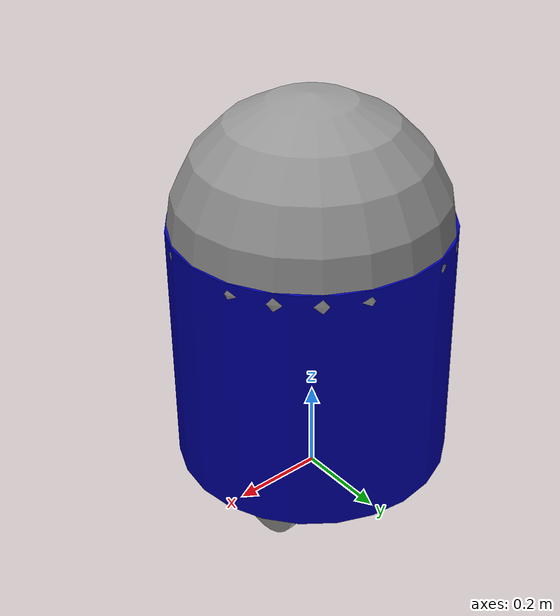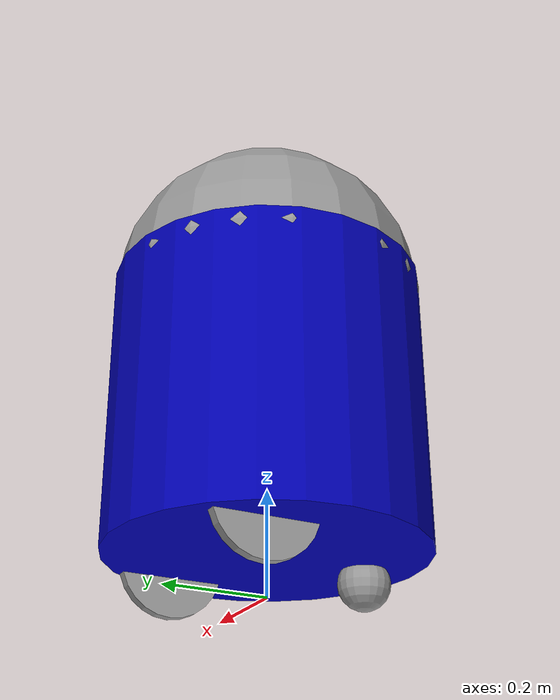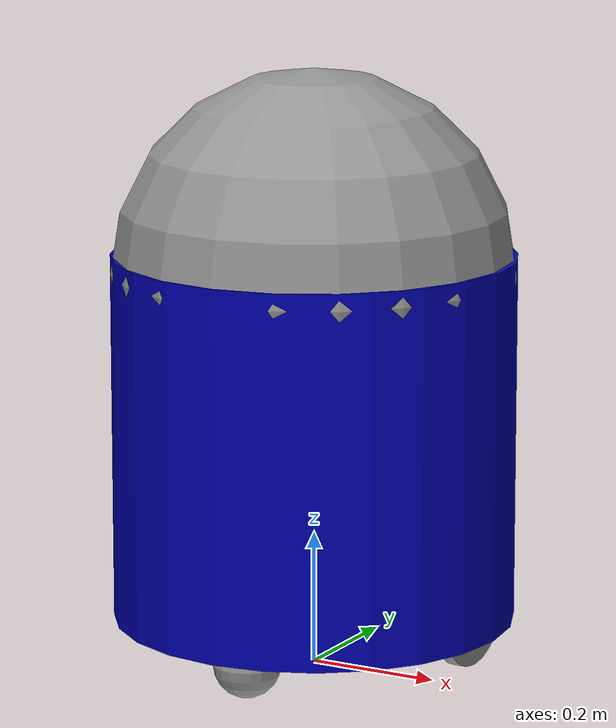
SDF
<?xml version='1.0'?>
<sdf version='1.6'>
  <model name='R3D3'>
    <link name='link_0'>
      <pose frame=''>0 -0 0.6 0 -0 0</pose>
      <inertial>
        <mass>1</mass>
        <inertia>
          <ixx>0.1</ixx>
          <ixy>0</ixy>
          <ixz>0</ixz>
          <iyy>0.1</iyy>
          <iyz>0</iyz>
          <izz>0.1</izz>
        </inertia>
        <pose frame=''>0 0 0 0 -0 0</pose>
      </inertial>
      <self_collide>0</self_collide>
      <kinematic>0</kinematic>
      <visual name='visual'>
        <pose frame=''>0 0 0 0 -0 0</pose>
        <geometry>
          <sphere>
            <radius>0.3</radius>
          </sphere>
        </geometry>
        <material>
          <lighting>1</lighting>
          <script>
            <uri>file://media/materials/scripts/gazebo.material</uri>
            <name>Gazebo/Grey</name>
          </script>
          <ambient>0.9 0.9 0.9 1</ambient>
          <diffuse>0.9 0.9 0.9 1</diffuse>
          <specular>0.9 0.9 0.9 1</specular>
          <emissive>0 0 0 1</emissive>
          <shader type='vertex'>
            <normal_map>__default__</normal_map>
          </shader>
        </material>
        <transparency>0</transparency>
        <cast_shadows>1</cast_shadows>
      </visual>
      <collision name='collision'>
        <laser_retro>0</laser_retro>
        <max_contacts>10</max_contacts>
        <pose frame=''>0 0 0 0 -0 0</pose>
        <geometry>
          <sphere>
            <radius>0.3</radius>
          </sphere>
        </geometry>
        <surface>
          <friction>
            <ode>
              <mu>1</mu>
              <mu2>1</mu2>
              <fdir1>0 0 0</fdir1>
              <slip1>0</slip1>
              <slip2>0</slip2>
            </ode>
            <torsional>
              <coefficient>1</coefficient>
              <patch_radius>0</patch_radius>
              <surface_radius>0</surface_radius>
              <use_patch_radius>1</use_patch_radius>
              <ode>
                <slip>0</slip>
              </ode>
            </torsional>
          </friction>
          <bounce>
            <restitution_coefficient>0</restitution_coefficient>
            <threshold>1e+06</threshold>
          </bounce>
          <contact>
            <collide_without_contact>0</collide_without_contact>
            <collide_without_contact_bitmask>1</collide_without_contact_bitmask>
            <collide_bitmask>1</collide_bitmask>
            <ode>
              <soft_cfm>0</soft_cfm>
              <soft_erp>0.2</soft_erp>
              <kp>1e+13</kp>
              <kd>1</kd>
              <max_vel>0.01</max_vel>
              <min_depth>0</min_depth>
            </ode>
            <bullet>
              <split_impulse>1</split_impulse>
              <split_impulse_penetration_threshold>-0.01</split_impulse_penetration_threshold>
              <soft_cfm>0</soft_cfm>
              <soft_erp>0.2</soft_erp>
              <kp>1e+13</kp>
              <kd>1</kd>
            </bullet>
          </contact>
        </surface>
      </collision>
    </link>
    <link name='link_1'>
      <pose frame=''>0 -0 0.35 0 -0 0</pose>
      <inertial>
        <mass>1</mass>
        <inertia>
          <ixx>0.145833</ixx>
          <ixy>0</ixy>
          <ixz>0</ixz>
          <iyy>0.145833</iyy>
          <iyz>0</iyz>
          <izz>0.125</izz>
        </inertia>
        <pose frame=''>0 0 0 0 -0 0</pose>
      </inertial>
      <self_collide>0</self_collide>
      <kinematic>0</kinematic>
      <visual name='visual'>
        <pose frame=''>0 0 0 0 -0 0</pose>
        <geometry>
          <cylinder>
            <radius>0.3</radius>
            <length>0.55</length>
          </cylinder>
        </geometry>
        <material>
          <lighting>1</lighting>
          <script>
            <uri>file://media/materials/scripts/gazebo.material</uri>
            <name>Gazebo/Grey</name>
          </script>
          <ambient>0 0 0.3 1</ambient>
          <diffuse>0 0 0.7 1</diffuse>
          <specular>0 0 0.01 1</specular>
          <emissive>0 0 0 1</emissive>
          <shader type='vertex'>
            <normal_map>__default__</normal_map>
          </shader>
        </material>
        <transparency>0</transparency>
        <cast_shadows>1</cast_shadows>
      </visual>
      <collision name='collision'>
        <laser_retro>0</laser_retro>
        <max_contacts>10</max_contacts>
        <pose frame=''>0 0 0 0 -0 0</pose>
        <geometry>
          <cylinder>
            <radius>0.3</radius>
            <length>0.55</length>
          </cylinder>
        </geometry>
        <surface>
          <friction>
            <ode>
              <mu>1</mu>
              <mu2>1</mu2>
              <fdir1>0 0 0</fdir1>
              <slip1>0</slip1>
              <slip2>0</slip2>
            </ode>
            <torsional>
              <coefficient>1</coefficient>
              <patch_radius>0</patch_radius>
              <surface_radius>0</surface_radius>
              <use_patch_radius>1</use_patch_radius>
              <ode>
                <slip>0</slip>
              </ode>
            </torsional>
          </friction>
          <bounce>
            <restitution_coefficient>0</restitution_coefficient>
            <threshold>1e+06</threshold>
          </bounce>
          <contact>
            <collide_without_contact>0</collide_without_contact>
            <collide_without_contact_bitmask>1</collide_without_contact_bitmask>
            <collide_bitmask>1</collide_bitmask>
            <ode>
              <soft_cfm>0</soft_cfm>
              <soft_erp>0.2</soft_erp>
              <kp>1e+13</kp>
              <kd>1</kd>
              <max_vel>0.01</max_vel>
              <min_depth>0</min_depth>
            </ode>
            <bullet>
              <split_impulse>1</split_impulse>
              <split_impulse_penetration_threshold>-0.01</split_impulse_penetration_threshold>
              <soft_cfm>0</soft_cfm>
              <soft_erp>0.2</soft_erp>
              <kp>1e+13</kp>
              <kd>1</kd>
            </bullet>
          </contact>
        </surface>
      </collision>
    </link>
    <link name='link_3'>
      <pose frame=''>-0.189936 0.1 0.1 -1e-06 1.57 -1e-06</pose>
      <inertial>
        <mass>1</mass>
        <inertia>
          <ixx>0.145833</ixx>
          <ixy>0</ixy>
          <ixz>0</ixz>
          <iyy>0.145833</iyy>
          <iyz>0</iyz>
          <izz>0.125</izz>
        </inertia>
        <pose frame=''>0 0 0 0 -0 0</pose>
      </inertial>
      <self_collide>0</self_collide>
      <kinematic>0</kinematic>
      <visual name='visual'>
        <pose frame=''>0 0 0 0 -0 0</pose>
        <geometry>
          <cylinder>
            <radius>0.1</radius>
            <length>0.02</length>
          </cylinder>
        </geometry>
        <material>
          <lighting>1</lighting>
          <script>
            <uri>file://media/materials/scripts/gazebo.material</uri>
            <name>Gazebo/Grey</name>
          </script>
          <ambient>0.3 0.3 0.3 1</ambient>
          <diffuse>0.7 0.7 0.7 1</diffuse>
          <specular>0.01 0.01 0.01 1</specular>
          <emissive>0 0 0 1</emissive>
          <shader type='vertex'>
            <normal_map>__default__</normal_map>
          </shader>
        </material>
        <transparency>0</transparency>
        <cast_shadows>1</cast_shadows>
      </visual>
      <collision name='collision'>
        <laser_retro>0</laser_retro>
        <max_contacts>10</max_contacts>
        <pose frame=''>0 0 0 0 -0 0</pose>
        <geometry>
          <cylinder>
            <radius>0.1</radius>
            <length>0.02</length>
          </cylinder>
        </geometry>
        <surface>
          <friction>
            <ode>
              <mu>1</mu>
              <mu2>1</mu2>
              <fdir1>0 0 0</fdir1>
              <slip1>0</slip1>
              <slip2>0</slip2>
            </ode>
            <torsional>
              <coefficient>1</coefficient>
              <patch_radius>0</patch_radius>
              <surface_radius>0</surface_radius>
              <use_patch_radius>1</use_patch_radius>
              <ode>
                <slip>0</slip>
              </ode>
            </torsional>
          </friction>
          <bounce>
            <restitution_coefficient>0</restitution_coefficient>
            <threshold>1e+06</threshold>
          </bounce>
          <contact>
            <collide_without_contact>0</collide_without_contact>
            <collide_without_contact_bitmask>1</collide_without_contact_bitmask>
            <collide_bitmask>1</collide_bitmask>
            <ode>
              <soft_cfm>0</soft_cfm>
              <soft_erp>0.2</soft_erp>
              <kp>1e+13</kp>
              <kd>1</kd>
              <max_vel>0.01</max_vel>
              <min_depth>0</min_depth>
            </ode>
            <bullet>
              <split_impulse>1</split_impulse>
              <split_impulse_penetration_threshold>-0.01</split_impulse_penetration_threshold>
              <soft_cfm>0</soft_cfm>
              <soft_erp>0.2</soft_erp>
              <kp>1e+13</kp>
              <kd>1</kd>
            </bullet>
          </contact>
        </surface>
      </collision>
    </link>
    <link name='link_3_clone'>
      <pose frame=''>0.210191 0.1 0.1 -1e-06 1.57 -1e-06</pose>
      <inertial>
        <mass>1</mass>
        <inertia>
          <ixx>0.145833</ixx>
          <ixy>0</ixy>
          <ixz>0</ixz>
          <iyy>0.145833</iyy>
          <iyz>0</iyz>
          <izz>0.125</izz>
        </inertia>
        <pose frame=''>0 0 0 0 -0 0</pose>
      </inertial>
      <self_collide>0</self_collide>
      <kinematic>0</kinematic>
      <visual name='visual'>
        <pose frame=''>0 0 0 0 -0 0</pose>
        <geometry>
          <cylinder>
            <radius>0.1</radius>
            <length>0.02</length>
          </cylinder>
        </geometry>
        <material>
          <lighting>1</lighting>
          <script>
            <uri>file://media/materials/scripts/gazebo.material</uri>
            <name>Gazebo/Grey</name>
          </script>
          <ambient>0.3 0.3 0.3 1</ambient>
          <diffuse>0.7 0.7 0.7 1</diffuse>
          <specular>0.01 0.01 0.01 1</specular>
          <emissive>0 0 0 1</emissive>
          <shader type='vertex'>
            <normal_map>__default__</normal_map>
          </shader>
        </material>
        <transparency>0</transparency>
        <cast_shadows>1</cast_shadows>
      </visual>
      <collision name='collision'>
        <laser_retro>0</laser_retro>
        <max_contacts>10</max_contacts>
        <pose frame=''>0 0 0 0 -0 0</pose>
        <geometry>
          <cylinder>
            <radius>0.1</radius>
            <length>0.02</length>
          </cylinder>
        </geometry>
        <surface>
          <friction>
            <ode>
              <mu>1</mu>
              <mu2>1</mu2>
              <fdir1>0 0 0</fdir1>
              <slip1>0</slip1>
              <slip2>0</slip2>
            </ode>
            <torsional>
              <coefficient>1</coefficient>
              <patch_radius>0</patch_radius>
              <surface_radius>0</surface_radius>
              <use_patch_radius>1</use_patch_radius>
              <ode>
                <slip>0</slip>
              </ode>
            </torsional>
          </friction>
          <bounce>
            <restitution_coefficient>0</restitution_coefficient>
            <threshold>1e+06</threshold>
          </bounce>
          <contact>
            <collide_without_contact>0</collide_without_contact>
            <collide_without_contact_bitmask>1</collide_without_contact_bitmask>
            <collide_bitmask>1</collide_bitmask>
            <ode>
              <soft_cfm>0</soft_cfm>
              <soft_erp>0.2</soft_erp>
              <kp>1e+13</kp>
              <kd>1</kd>
              <max_vel>0.01</max_vel>
              <min_depth>0</min_depth>
            </ode>
            <bullet>
              <split_impulse>1</split_impulse>
              <split_impulse_penetration_threshold>-0.01</split_impulse_penetration_threshold>
              <soft_cfm>0</soft_cfm>
              <soft_erp>0.2</soft_erp>
              <kp>1e+13</kp>
              <kd>1</kd>
            </bullet>
          </contact>
        </surface>
      </collision>
    </link>
    <link name='link_5'>
      <pose frame=''>0 0.1 0.1 -1e-06 1.57 -1e-06</pose>
      <inertial>
        <mass>1</mass>
        <inertia>
          <ixx>0.145833</ixx>
          <ixy>0</ixy>
          <ixz>0</ixz>
          <iyy>0.145833</iyy>
          <iyz>0</iyz>
          <izz>0.125</izz>
        </inertia>
        <pose frame=''>0 0 0 0 -0 0</pose>
      </inertial>
      <self_collide>0</self_collide>
      <kinematic>0</kinematic>
      <visual name='visual'>
        <pose frame=''>0 0 0 0 -0 0</pose>
        <geometry>
          <cylinder>
            <radius>0.02</radius>
            <length>0.4</length>
          </cylinder>
        </geometry>
        <material>
          <lighting>1</lighting>
          <script>
            <uri>file://media/materials/scripts/gazebo.material</uri>
            <name>Gazebo/Grey</name>
          </script>
          <ambient>0.3 0.3 0.3 1</ambient>
          <diffuse>0.7 0.7 0.7 1</diffuse>
          <specular>0.01 0.01 0.01 1</specular>
          <emissive>0 0 0 1</emissive>
          <shader type='vertex'>
            <normal_map>__default__</normal_map>
          </shader>
        </material>
        <transparency>0</transparency>
        <cast_shadows>1</cast_shadows>
      </visual>
      <collision name='collision'>
        <laser_retro>0</laser_retro>
        <max_contacts>10</max_contacts>
        <pose frame=''>0 0 0 0 -0 0</pose>
        <geometry>
          <cylinder>
            <radius>0.02</radius>
            <length>0.4</length>
          </cylinder>
        </geometry>
        <surface>
          <friction>
            <ode>
              <mu>1</mu>
              <mu2>1</mu2>
              <fdir1>0 0 0</fdir1>
              <slip1>0</slip1>
              <slip2>0</slip2>
            </ode>
            <torsional>
              <coefficient>1</coefficient>
              <patch_radius>0</patch_radius>
              <surface_radius>0</surface_radius>
              <use_patch_radius>1</use_patch_radius>
              <ode>
                <slip>0</slip>
              </ode>
            </torsional>
          </friction>
          <bounce>
            <restitution_coefficient>0</restitution_coefficient>
            <threshold>1e+06</threshold>
          </bounce>
          <contact>
            <collide_without_contact>0</collide_without_contact>
            <collide_without_contact_bitmask>1</collide_without_contact_bitmask>
            <collide_bitmask>1</collide_bitmask>
            <ode>
              <soft_cfm>0</soft_cfm>
              <soft_erp>0.2</soft_erp>
              <kp>1e+13</kp>
              <kd>1</kd>
              <max_vel>0.01</max_vel>
              <min_depth>0</min_depth>
            </ode>
            <bullet>
              <split_impulse>1</split_impulse>
              <split_impulse_penetration_threshold>-0.01</split_impulse_penetration_threshold>
              <soft_cfm>0</soft_cfm>
              <soft_erp>0.2</soft_erp>
              <kp>1e+13</kp>
              <kd>1</kd>
            </bullet>
          </contact>
        </surface>
      </collision>
    </link>
    <link name='link_6'>
      <pose frame=''>0 -0.2 0.05 0 -0 0</pose>
      <inertial>
        <mass>1</mass>
        <inertia>
          <ixx>0.1</ixx>
          <ixy>0</ixy>
          <ixz>0</ixz>
          <iyy>0.1</iyy>
          <iyz>0</iyz>
          <izz>0.1</izz>
        </inertia>
        <pose frame=''>0 0 0 0 -0 0</pose>
      </inertial>
      <self_collide>0</self_collide>
      <kinematic>0</kinematic>
      <visual name='visual'>
        <pose frame=''>0 0 0 0 -0 0</pose>
        <geometry>
          <sphere>
            <radius>0.05</radius>
          </sphere>
        </geometry>
        <material>
          <lighting>1</lighting>
          <script>
            <uri>file://media/materials/scripts/gazebo.material</uri>
            <name>Gazebo/Grey</name>
          </script>
          <ambient>0.3 0.3 0.3 1</ambient>
          <diffuse>0.7 0.7 0.7 1</diffuse>
          <specular>0.01 0.01 0.01 1</specular>
          <emissive>0 0 0 1</emissive>
          <shader type='vertex'>
            <normal_map>__default__</normal_map>
          </shader>
        </material>
        <transparency>0</transparency>
        <cast_shadows>1</cast_shadows>
      </visual>
      <collision name='collision'>
        <laser_retro>0</laser_retro>
        <max_contacts>10</max_contacts>
        <pose frame=''>0 0 0 0 -0 0</pose>
        <geometry>
          <sphere>
            <radius>0.05</radius>
          </sphere>
        </geometry>
        <surface>
          <friction>
            <ode>
              <mu>1</mu>
              <mu2>1</mu2>
              <fdir1>0 0 0</fdir1>
              <slip1>0</slip1>
              <slip2>0</slip2>
            </ode>
            <torsional>
              <coefficient>1</coefficient>
              <patch_radius>0</patch_radius>
              <surface_radius>0</surface_radius>
              <use_patch_radius>1</use_patch_radius>
              <ode>
                <slip>0</slip>
              </ode>
            </torsional>
          </friction>
          <bounce>
            <restitution_coefficient>0</restitution_coefficient>
            <threshold>1e+06</threshold>
          </bounce>
          <contact>
            <collide_without_contact>0</collide_without_contact>
            <collide_without_contact_bitmask>1</collide_without_contact_bitmask>
            <collide_bitmask>1</collide_bitmask>
            <ode>
              <soft_cfm>0</soft_cfm>
              <soft_erp>0.2</soft_erp>
              <kp>1e+13</kp>
              <kd>1</kd>
              <max_vel>0.01</max_vel>
              <min_depth>0</min_depth>
            </ode>
            <bullet>
              <split_impulse>1</split_impulse>
              <split_impulse_penetration_threshold>-0.01</split_impulse_penetration_threshold>
              <soft_cfm>0</soft_cfm>
              <soft_erp>0.2</soft_erp>
              <kp>1e+13</kp>
              <kd>1</kd>
            </bullet>
          </contact>
        </surface>
      </collision>
    </link>
    <joint name='link_0_JOINT_2' type='fixed'>
      <parent>link_0</parent>
      <child>link_1</child>
      <pose frame=''>0 0 0 0 -0 0</pose>
      <physics>
        <ode>
          <limit>
            <cfm>0</cfm>
            <erp>0.2</erp>
          </limit>
          <suspension>
            <cfm>0</cfm>
            <erp>0.2</erp>
          </suspension>
        </ode>
      </physics>
    </joint>
    <joint name='link_1_JOINT_3' type='fixed'>
      <parent>link_1</parent>
      <child>link_5</child>
      <pose frame=''>0 0 0 0 -0 0</pose>
      <physics>
        <ode>
          <limit>
            <cfm>0</cfm>
            <erp>0.2</erp>
          </limit>
          <suspension>
            <cfm>0</cfm>
            <erp>0.2</erp>
          </suspension>
        </ode>
      </physics>
    </joint>
    <joint name='link_1_JOINT_4' type='ball'>
      <parent>link_1</parent>
      <child>link_6</child>
      <pose frame=''>0 0 0 0 -0 0</pose>
      <physics>
        <ode>
          <limit>
            <cfm>0</cfm>
            <erp>0.2</erp>
          </limit>
          <suspension>
            <cfm>0</cfm>
            <erp>0.2</erp>
          </suspension>
        </ode>
      </physics>
    </joint>
    <joint name='link_5_JOINT_0' type='revolute'>
      <parent>link_5</parent>
      <child>link_3</child>
      <pose frame=''>0 0 0 0 -0 0</pose>
      <axis>
        <xyz>0 0 1</xyz>
        <use_parent_model_frame>0</use_parent_model_frame>
        <limit>
          <lower>-1.79769e+308</lower>
          <upper>1.79769e+308</upper>
          <effort>-1</effort>
          <velocity>-1</velocity>
        </limit>
        <dynamics>
          <spring_reference>0</spring_reference>
          <spring_stiffness>0</spring_stiffness>
          <damping>0</damping>
          <friction>0</friction>
        </dynamics>
      </axis>
      <physics>
        <ode>
          <limit>
            <cfm>0</cfm>
            <erp>0.2</erp>
          </limit>
          <suspension>
            <cfm>0</cfm>
            <erp>0.2</erp>
          </suspension>
        </ode>
      </physics>
    </joint>
    <joint name='link_5_JOINT_1' type='revolute'>
      <parent>link_5</parent>
      <child>link_3_clone</child>
      <pose frame=''>0 0 0 0 -0 0</pose>
      <axis>
        <xyz>0 0 1</xyz>
        <use_parent_model_frame>0</use_parent_model_frame>
        <limit>
          <lower>-1.79769e+308</lower>
          <upper>1.79769e+308</upper>
          <effort>-1</effort>
          <velocity>-1</velocity>
        </limit>
        <dynamics>
          <spring_reference>0</spring_reference>
          <spring_stiffness>0</spring_stiffness>
          <damping>0</damping>
          <friction>0</friction>
        </dynamics>
      </axis>
      <physics>
        <ode>
          <limit>
            <cfm>0</cfm>
            <erp>0.2</erp>
          </limit>
          <suspension>
            <cfm>0</cfm>
            <erp>0.2</erp>
          </suspension>
        </ode>
      </physics>
    </joint>
    <static>0</static>
    <allow_auto_disable>1</allow_auto_disable>
  </model>
</sdf>
